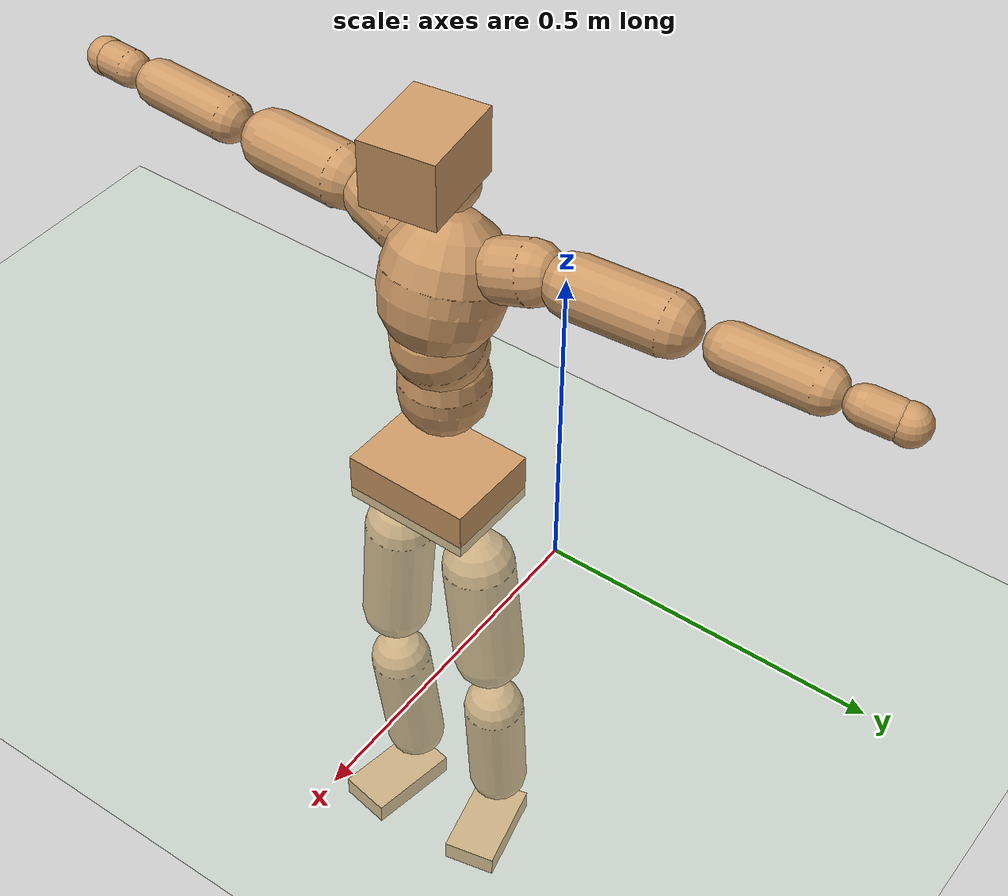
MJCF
<mujoco model="humanoid">
  <compiler coordinate="local" angle="radian"/>
  <default>
    <joint damping="0.0" armature="0.01" stiffness="0.0" limited="true"/>
    <geom conaffinity="1" condim="3" contype="7" margin="0.001" rgba="0.8 0.6 .4 1"/>
  </default>
  <asset>
    <texture type="skybox" builtin="gradient" rgb1=".4 .5 .6" rgb2="0 0 0" width="100" height="100"/>
    <texture builtin="flat" height="1278" mark="cross" markrgb="1 1 1" name="texgeom" random="0.01" rgb1="0.8 0.6 0.4" rgb2="0.8 0.6 0.4" type="cube" width="127"/>
    <texture builtin="checker" height="100" name="texplane" rgb1="0 0 0" rgb2="0.8 0.8 0.8" type="2d" width="100"/>
    <material name="MatPlane" reflectance="0.5" shininess="1" specular="1" texrepeat="60 60" texture="texplane"/>
    <material name="geom" texture="texgeom" texuniform="true"/>
  </asset>
  <worldbody>
    <light cutoff="100" diffuse="1 1 1" dir="-0 0 -1.3" directional="true" exponent="1" pos="0 0 1.3" specular=".1 .1 .1"/>
    <geom conaffinity="1" condim="3" name="floor" pos="0 0 0" rgba="0.8 0.9 0.8 1" size="100 100 .2" type="plane" material="MatPlane"/>
    <body name="Pelvis" pos="0.0002 -0.2145 0.0313">
      <freejoint name="Pelvis"/>
      <geom type="box" contype="1" conaffinity="1" density="500" pos="-0.0047 0.0001 -0.0122" size="0.0782 0.1026 0.0396" quat="0.9999 0.0000 0.0000 -0.0116" name="Pelvis"/>
      <body name="L_Hip" pos="-0.0037 0.0684 -0.0869">
        <joint name="L_Hip_x" type="hinge" pos="0 0 0" axis="1 0 0" stiffness="800" damping="80" armature="0.02" range="-180.0000 180.0000"/>
        <joint name="L_Hip_y" type="hinge" pos="0 0 0" axis="0 1 0" stiffness="800" damping="80" armature="0.02" range="-180.0000 180.0000"/>
        <joint name="L_Hip_z" type="hinge" pos="0 0 0" axis="0 0 1" stiffness="800" damping="80" armature="0.02" range="-180.0000 180.0000"/>
        <geom type="capsule" contype="1" conaffinity="1" density="500" fromto="-0.0015 0.0057 -0.0683 -0.0059 0.0230 -0.2731" size="0.0565" name="L_Hip"/>
        <body name="L_Knee" pos="-0.0073 0.0287 -0.3413">
          <joint name="L_Knee_x" type="hinge" pos="0 0 0" axis="1 0 0" stiffness="800" damping="80" armature="0.02" range="-180.0000 180.0000"/>
          <joint name="L_Knee_y" type="hinge" pos="0 0 0" axis="0 1 0" stiffness="800" damping="80" armature="0.02" range="-180.0000 180.0000"/>
          <joint name="L_Knee_z" type="hinge" pos="0 0 0" axis="0 0 1" stiffness="800" damping="80" armature="0.02" range="-180.0000 180.0000"/>
          <geom type="capsule" contype="1" conaffinity="1" density="500" fromto="-0.0078 -0.0022 -0.0716 -0.0313 -0.0087 -0.2863" size="0.0492" name="L_Knee"/>
          <body name="L_Ankle" pos="-0.0392 -0.0109 -0.3578">
            <joint name="L_Ankle_x" type="hinge" pos="0 0 0" axis="1 0 0" stiffness="800" damping="80" armature="0.02" range="-180.0000 180.0000"/>
            <joint name="L_Ankle_y" type="hinge" pos="0 0 0" axis="0 1 0" stiffness="800" damping="80" armature="0.02" range="-180.0000 180.0000"/>
            <joint name="L_Ankle_z" type="hinge" pos="0 0 0" axis="0 0 1" stiffness="800" damping="80" armature="0.02" range="-180.0000 180.0000"/>
            <geom type="box" contype="1" conaffinity="1" density="500" pos="0.0543 0.0120 -0.0259" size="0.0769 0.0437 0.019" quat="0.9941 0.0000 0.0000 0.1086" name="L_Ankle"/>
            <body name="L_Toe" pos="0.1087 0.024 -0.0518">
              <joint name="L_Toe_x" type="hinge" pos="0 0 0" axis="1 0 0" stiffness="500" damping="50" armature="0.02" range="-180.0000 180.0000"/>
              <joint name="L_Toe_y" type="hinge" pos="0 0 0" axis="0 1 0" stiffness="500" damping="50" armature="0.02" range="-180.0000 180.0000"/>
              <joint name="L_Toe_z" type="hinge" pos="0 0 0" axis="0 0 1" stiffness="500" damping="50" armature="0.02" range="-180.0000 180.0000"/>
              <geom type="box" contype="1" conaffinity="1" density="500" pos="0.0000 0.0000 0.0261" size="0.0009 0.0022 0.001" quat="0.9933 0.0000 0.0000 0.1152" name="L_Toe"/>
            </body>
          </body>
        </body>
      </body>
      <body name="R_Hip" pos="-0.0008 -0.0661 -0.0865">
        <joint name="R_Hip_x" type="hinge" pos="0 0 0" axis="1 0 0" stiffness="800" damping="80" armature="0.02" range="-180.0000 180.0000"/>
        <joint name="R_Hip_y" type="hinge" pos="0 0 0" axis="0 1 0" stiffness="800" damping="80" armature="0.02" range="-180.0000 180.0000"/>
        <joint name="R_Hip_z" type="hinge" pos="0 0 0" axis="0 0 1" stiffness="800" damping="80" armature="0.02" range="-180.0000 180.0000"/>
        <geom type="capsule" contype="1" conaffinity="1" density="500" fromto="-0.0017 -0.0066 -0.0699 -0.0068 -0.0266 -0.2794" size="0.0558" name="R_Hip"/>
        <body name="R_Knee" pos="-0.0085 -0.0332 -0.3493">
          <joint name="R_Knee_x" type="hinge" pos="0 0 0" axis="1 0 0" stiffness="800" damping="80" armature="0.02" range="-180.0000 180.0000"/>
          <joint name="R_Knee_y" type="hinge" pos="0 0 0" axis="0 1 0" stiffness="800" damping="80" armature="0.02" range="-180.0000 180.0000"/>
          <joint name="R_Knee_z" type="hinge" pos="0 0 0" axis="0 0 1" stiffness="800" damping="80" armature="0.02" range="-180.0000 180.0000"/>
          <geom type="capsule" contype="1" conaffinity="1" density="500" fromto="-0.0076 0.0027 -0.0721 -0.0305 0.0108 -0.2884" size="0.0497" name="R_Knee"/>
          <body name="R_Ankle" pos="-0.0381 0.0135 -0.3605">
            <joint name="R_Ankle_x" type="hinge" pos="0 0 0" axis="1 0 0" stiffness="800" damping="80" armature="0.02" range="-180.0000 180.0000"/>
            <joint name="R_Ankle_y" type="hinge" pos="0 0 0" axis="0 1 0" stiffness="800" damping="80" armature="0.02" range="-180.0000 180.0000"/>
            <joint name="R_Ankle_z" type="hinge" pos="0 0 0" axis="0 0 1" stiffness="800" damping="80" armature="0.02" range="-180.0000 180.0000"/>
            <geom type="box" contype="1" conaffinity="1" density="500" pos="0.0559 -0.0096 -0.0219" size="0.0787 0.0437 0.0187" quat="0.9964 0.0000 0.0000 -0.0848" name="R_Ankle"/>
            <body name="R_Toe" pos="0.1119 -0.0192 -0.0437">
              <joint name="R_Toe_x" type="hinge" pos="0 0 0" axis="1 0 0" stiffness="500" damping="50" armature="0.02" range="-180.0000 180.0000"/>
              <joint name="R_Toe_y" type="hinge" pos="0 0 0" axis="0 1 0" stiffness="500" damping="50" armature="0.02" range="-180.0000 180.0000"/>
              <joint name="R_Toe_z" type="hinge" pos="0 0 0" axis="0 0 1" stiffness="500" damping="50" armature="0.02" range="-180.0000 180.0000"/>
              <geom type="box" contype="1" conaffinity="1" density="500" pos="0.0000 0.0000 0.0233" size="0.0009 0.0022 0.001" quat="0.9972 0.0000 0.0000 -0.0748" name="R_Toe"/>
            </body>
          </body>
        </body>
      </body>
      <body name="Torso" pos="-0.0236 -0.0017 0.1003">
        <joint name="Torso_x" type="hinge" pos="0 0 0" axis="1 0 0" stiffness="1000" damping="100" armature="0.02" range="-180.0000 180.0000"/>
        <joint name="Torso_y" type="hinge" pos="0 0 0" axis="0 1 0" stiffness="1000" damping="100" armature="0.02" range="-180.0000 180.0000"/>
        <joint name="Torso_z" type="hinge" pos="0 0 0" axis="0 0 1" stiffness="1000" damping="100" armature="0.02" range="-180.0000 180.0000"/>
        <geom type="capsule" contype="1" conaffinity="1" density="500" fromto="-0.0011 0.0017 0.0746 -0.0007 0.0012 0.0497" size="0.0685" name="Torso"/>
        <body name="Spine" pos="-0.0018 0.0029 0.1243">
          <joint name="Spine_x" type="hinge" pos="0 0 0" axis="1 0 0" stiffness="1000" damping="100" armature="0.02" range="-180.0000 180.0000"/>
          <joint name="Spine_y" type="hinge" pos="0 0 0" axis="0 1 0" stiffness="1000" damping="100" armature="0.02" range="-180.0000 180.0000"/>
          <joint name="Spine_z" type="hinge" pos="0 0 0" axis="0 0 1" stiffness="1000" damping="100" armature="0.02" range="-180.0000 180.0000"/>
          <geom type="capsule" contype="1" conaffinity="1" density="500" fromto="0.0149 0.0008 0.0295 0.0100 0.0005 0.0197" size="0.0706" name="Spine"/>
          <body name="Chest" pos="0.0249 0.0013 0.0491">
            <joint name="Chest_x" type="hinge" pos="0 0 0" axis="1 0 0" stiffness="1000" damping="100" armature="0.02" range="-180.0000 180.0000"/>
            <joint name="Chest_y" type="hinge" pos="0 0 0" axis="0 1 0" stiffness="1000" damping="100" armature="0.02" range="-180.0000 180.0000"/>
            <joint name="Chest_z" type="hinge" pos="0 0 0" axis="0 0 1" stiffness="1000" damping="100" armature="0.02" range="-180.0000 180.0000"/>
            <geom type="capsule" contype="1" conaffinity="1" density="500" fromto="-0.0287 -0.0011 0.0893 -0.0191 -0.0007 0.0595" size="0.0918" name="Chest"/>
            <body name="Neck" pos="-0.0566 -0.0026 0.2116">
              <joint name="Neck_x" type="hinge" pos="0 0 0" axis="1 0 0" stiffness="500" damping="50" armature="0.02" range="-180.0000 180.0000"/>
              <joint name="Neck_y" type="hinge" pos="0 0 0" axis="0 1 0" stiffness="500" damping="50" armature="0.02" range="-180.0000 180.0000"/>
              <joint name="Neck_z" type="hinge" pos="0 0 0" axis="0 0 1" stiffness="500" damping="50" armature="0.02" range="-180.0000 180.0000"/>
              <geom type="capsule" contype="1" conaffinity="1" density="500" fromto="0.0100 0.0010 0.0128 0.0399 0.0040 0.0511" size="0.0395" name="Neck"/>
              <body name="Head" pos="0.0499 0.005 0.0639">
                <joint name="Head_x" type="hinge" pos="0 0 0" axis="1 0 0" stiffness="500" damping="50" armature="0.02" range="-180.0000 180.0000"/>
                <joint name="Head_y" type="hinge" pos="0 0 0" axis="0 1 0" stiffness="500" damping="50" armature="0.02" range="-180.0000 180.0000"/>
                <joint name="Head_z" type="hinge" pos="0 0 0" axis="0 0 1" stiffness="500" damping="50" armature="0.02" range="-180.0000 180.0000"/>
                <geom type="box" contype="1" conaffinity="1" density="500" pos="0.0259 0.0035 0.0329" size="0.0716 0.0564 0.0505" quat="0.9978 0.0000 0.0000 0.0667" name="Head"/>
              </body>
            </body>
            <body name="L_Thorax" pos="-0.041 0.069 0.1183">
              <joint name="L_Thorax_x" type="hinge" pos="0 0 0" axis="1 0 0" stiffness="500" damping="50" armature="0.02" range="-180.0000 180.0000"/>
              <joint name="L_Thorax_y" type="hinge" pos="0 0 0" axis="0 1 0" stiffness="500" damping="50" armature="0.02" range="-180.0000 180.0000"/>
              <joint name="L_Thorax_z" type="hinge" pos="0 0 0" axis="0 0 1" stiffness="500" damping="50" armature="0.02" range="-180.0000 180.0000"/>
              <geom type="capsule" contype="1" conaffinity="1" density="500" fromto="-0.0010 0.0155 0.0052 -0.0039 0.0621 0.0208" size="0.0463" name="L_Thorax"/>
              <body name="L_Shoulder" pos="-0.0049 0.0776 0.026">
                <joint name="L_Shoulder_x" type="hinge" pos="0 0 0" axis="1 0 0" stiffness="500" damping="50" armature="0.02" range="-720.0000 720.0000"/>
                <joint name="L_Shoulder_y" type="hinge" pos="0 0 0" axis="0 1 0" stiffness="500" damping="50" armature="0.02" range="-720.0000 720.0000"/>
                <joint name="L_Shoulder_z" type="hinge" pos="0 0 0" axis="0 0 1" stiffness="500" damping="50" armature="0.02" range="-720.0000 720.0000"/>
                <geom type="capsule" contype="1" conaffinity="1" density="500" fromto="-0.0043 0.0454 -0.0010 -0.0173 0.1817 -0.0040" size="0.0459" name="L_Shoulder"/>
                <body name="L_Elbow" pos="-0.0216 0.2271 -0.005">
                  <joint name="L_Elbow_x" type="hinge" pos="0 0 0" axis="1 0 0" stiffness="500" damping="50" armature="0.02" range="-720.0000 720.0000"/>
                  <joint name="L_Elbow_y" type="hinge" pos="0 0 0" axis="0 1 0" stiffness="500" damping="50" armature="0.02" range="-720.0000 720.0000"/>
                  <joint name="L_Elbow_z" type="hinge" pos="0 0 0" axis="0 0 1" stiffness="500" damping="50" armature="0.02" range="-720.0000 720.0000"/>
                  <geom type="capsule" contype="1" conaffinity="1" density="500" fromto="-0.0002 0.0427 0.0013 -0.0010 0.1707 0.0053" size="0.0361" name="L_Elbow"/>
                  <body name="L_Wrist" pos="-0.0012 0.2134 0.0067">
                    <joint name="L_Wrist_x" type="hinge" pos="0 0 0" axis="1 0 0" stiffness="300" damping="30" armature="0.02" range="-180.0000 180.0000"/>
                    <joint name="L_Wrist_y" type="hinge" pos="0 0 0" axis="0 1 0" stiffness="300" damping="30" armature="0.02" range="-180.0000 180.0000"/>
                    <joint name="L_Wrist_z" type="hinge" pos="0 0 0" axis="0 0 1" stiffness="300" damping="30" armature="0.02" range="-180.0000 180.0000"/>
                    <geom type="capsule" contype="1" conaffinity="1" density="500" fromto="-0.0024 0.0145 -0.0017 -0.0096 0.0578 -0.0069" size="0.0276" name="L_Wrist"/>
                    <body name="L_Hand" pos="-0.012 0.0723 -0.0086">
                      <joint name="L_Hand_x" type="hinge" pos="0 0 0" axis="1 0 0" stiffness="300" damping="30" armature="0.02" range="-180.0000 180.0000"/>
                      <joint name="L_Hand_y" type="hinge" pos="0 0 0" axis="0 1 0" stiffness="300" damping="30" armature="0.02" range="-180.0000 180.0000"/>
                      <joint name="L_Hand_z" type="hinge" pos="0 0 0" axis="0 0 1" stiffness="300" damping="30" armature="0.02" range="-180.0000 180.0000"/>
                      <geom type="sphere" contype="1" conaffinity="1" density="500" size="0.0293" pos="0.0000 0.0000 0.0000" name="L_Hand"/>
                    </body>
                  </body>
                </body>
              </body>
            </body>
            <body name="R_Thorax" pos="-0.0461 -0.072 0.1167">
              <joint name="R_Thorax_x" type="hinge" pos="0 0 0" axis="1 0 0" stiffness="500" damping="50" armature="0.02" range="-180.0000 180.0000"/>
              <joint name="R_Thorax_y" type="hinge" pos="0 0 0" axis="0 1 0" stiffness="500" damping="50" armature="0.02" range="-180.0000 180.0000"/>
              <joint name="R_Thorax_z" type="hinge" pos="0 0 0" axis="0 0 1" stiffness="500" damping="50" armature="0.02" range="-180.0000 180.0000"/>
              <geom type="capsule" contype="1" conaffinity="1" density="500" fromto="-0.0016 -0.0162 0.0057 -0.0064 -0.0647 0.0230" size="0.0458" name="R_Thorax"/>
              <body name="R_Shoulder" pos="-0.008 -0.0809 0.0287">
                <joint name="R_Shoulder_x" type="hinge" pos="0 0 0" axis="1 0 0" stiffness="500" damping="50" armature="0.02" range="-720.0000 720.0000"/>
                <joint name="R_Shoulder_y" type="hinge" pos="0 0 0" axis="0 1 0" stiffness="500" damping="50" armature="0.02" range="-720.0000 720.0000"/>
                <joint name="R_Shoulder_z" type="hinge" pos="0 0 0" axis="0 0 1" stiffness="500" damping="50" armature="0.02" range="-720.0000 720.0000"/>
                <geom type="capsule" contype="1" conaffinity="1" density="500" fromto="-0.0035 -0.0447 -0.0019 -0.0138 -0.1788 -0.0075" size="0.0474" name="R_Shoulder"/>
                <body name="R_Elbow" pos="-0.0173 -0.2235 -0.0094">
                  <joint name="R_Elbow_x" type="hinge" pos="0 0 0" axis="1 0 0" stiffness="500" damping="50" armature="0.02" range="-720.0000 720.0000"/>
                  <joint name="R_Elbow_y" type="hinge" pos="0 0 0" axis="0 1 0" stiffness="500" damping="50" armature="0.02" range="-720.0000 720.0000"/>
                  <joint name="R_Elbow_z" type="hinge" pos="0 0 0" axis="0 0 1" stiffness="500" damping="50" armature="0.02" range="-720.0000 720.0000"/>
                  <geom type="capsule" contype="1" conaffinity="1" density="500" fromto="-0.0010 -0.0446 0.0015 -0.0042 -0.1784 0.0060" size="0.0363" name="R_Elbow"/>
                  <body name="R_Wrist" pos="-0.0052 -0.223 0.0075">
                    <joint name="R_Wrist_x" type="hinge" pos="0 0 0" axis="1 0 0" stiffness="300" damping="30" armature="0.02" range="-180.0000 180.0000"/>
                    <joint name="R_Wrist_y" type="hinge" pos="0 0 0" axis="0 1 0" stiffness="300" damping="30" armature="0.02" range="-180.0000 180.0000"/>
                    <joint name="R_Wrist_z" type="hinge" pos="0 0 0" axis="0 0 1" stiffness="300" damping="30" armature="0.02" range="-180.0000 180.0000"/>
                    <geom type="capsule" contype="1" conaffinity="1" density="500" fromto="-0.0019 -0.0147 -0.0013 -0.0075 -0.0589 -0.0052" size="0.0286" name="R_Wrist"/>
                    <body name="R_Hand" pos="-0.0094 -0.0736 -0.0065">
                      <joint name="R_Hand_x" type="hinge" pos="0 0 0" axis="1 0 0" stiffness="300" damping="30" armature="0.02" range="-180.0000 180.0000"/>
                      <joint name="R_Hand_y" type="hinge" pos="0 0 0" axis="0 1 0" stiffness="300" damping="30" armature="0.02" range="-180.0000 180.0000"/>
                      <joint name="R_Hand_z" type="hinge" pos="0 0 0" axis="0 0 1" stiffness="300" damping="30" armature="0.02" range="-180.0000 180.0000"/>
                      <geom type="sphere" contype="1" conaffinity="1" density="500" size="0.0298" pos="0.0000 0.0000 0.0000" name="R_Hand"/>
                    </body>
                  </body>
                </body>
              </body>
            </body>
          </body>
        </body>
      </body>
    </body>
  </worldbody>
  <actuator>
    <motor name="L_Hip_x" joint="L_Hip_x" gear="500"/>
    <motor name="L_Hip_y" joint="L_Hip_y" gear="500"/>
    <motor name="L_Hip_z" joint="L_Hip_z" gear="500"/>
    <motor name="L_Knee_x" joint="L_Knee_x" gear="500"/>
    <motor name="L_Knee_y" joint="L_Knee_y" gear="500"/>
    <motor name="L_Knee_z" joint="L_Knee_z" gear="500"/>
    <motor name="L_Ankle_x" joint="L_Ankle_x" gear="500"/>
    <motor name="L_Ankle_y" joint="L_Ankle_y" gear="500"/>
    <motor name="L_Ankle_z" joint="L_Ankle_z" gear="500"/>
    <motor name="L_Toe_x" joint="L_Toe_x" gear="500"/>
    <motor name="L_Toe_y" joint="L_Toe_y" gear="500"/>
    <motor name="L_Toe_z" joint="L_Toe_z" gear="500"/>
    <motor name="R_Hip_x" joint="R_Hip_x" gear="500"/>
    <motor name="R_Hip_y" joint="R_Hip_y" gear="500"/>
    <motor name="R_Hip_z" joint="R_Hip_z" gear="500"/>
    <motor name="R_Knee_x" joint="R_Knee_x" gear="500"/>
    <motor name="R_Knee_y" joint="R_Knee_y" gear="500"/>
    <motor name="R_Knee_z" joint="R_Knee_z" gear="500"/>
    <motor name="R_Ankle_x" joint="R_Ankle_x" gear="500"/>
    <motor name="R_Ankle_y" joint="R_Ankle_y" gear="500"/>
    <motor name="R_Ankle_z" joint="R_Ankle_z" gear="500"/>
    <motor name="R_Toe_x" joint="R_Toe_x" gear="500"/>
    <motor name="R_Toe_y" joint="R_Toe_y" gear="500"/>
    <motor name="R_Toe_z" joint="R_Toe_z" gear="500"/>
    <motor name="Torso_x" joint="Torso_x" gear="500"/>
    <motor name="Torso_y" joint="Torso_y" gear="500"/>
    <motor name="Torso_z" joint="Torso_z" gear="500"/>
    <motor name="Spine_x" joint="Spine_x" gear="500"/>
    <motor name="Spine_y" joint="Spine_y" gear="500"/>
    <motor name="Spine_z" joint="Spine_z" gear="500"/>
    <motor name="Chest_x" joint="Chest_x" gear="500"/>
    <motor name="Chest_y" joint="Chest_y" gear="500"/>
    <motor name="Chest_z" joint="Chest_z" gear="500"/>
    <motor name="Neck_x" joint="Neck_x" gear="500"/>
    <motor name="Neck_y" joint="Neck_y" gear="500"/>
    <motor name="Neck_z" joint="Neck_z" gear="500"/>
    <motor name="Head_x" joint="Head_x" gear="500"/>
    <motor name="Head_y" joint="Head_y" gear="500"/>
    <motor name="Head_z" joint="Head_z" gear="500"/>
    <motor name="L_Thorax_x" joint="L_Thorax_x" gear="500"/>
    <motor name="L_Thorax_y" joint="L_Thorax_y" gear="500"/>
    <motor name="L_Thorax_z" joint="L_Thorax_z" gear="500"/>
    <motor name="L_Shoulder_x" joint="L_Shoulder_x" gear="500"/>
    <motor name="L_Shoulder_y" joint="L_Shoulder_y" gear="500"/>
    <motor name="L_Shoulder_z" joint="L_Shoulder_z" gear="500"/>
    <motor name="L_Elbow_x" joint="L_Elbow_x" gear="500"/>
    <motor name="L_Elbow_y" joint="L_Elbow_y" gear="500"/>
    <motor name="L_Elbow_z" joint="L_Elbow_z" gear="500"/>
    <motor name="L_Wrist_x" joint="L_Wrist_x" gear="500"/>
    <motor name="L_Wrist_y" joint="L_Wrist_y" gear="500"/>
    <motor name="L_Wrist_z" joint="L_Wrist_z" gear="500"/>
    <motor name="L_Hand_x" joint="L_Hand_x" gear="500"/>
    <motor name="L_Hand_y" joint="L_Hand_y" gear="500"/>
    <motor name="L_Hand_z" joint="L_Hand_z" gear="500"/>
    <motor name="R_Thorax_x" joint="R_Thorax_x" gear="500"/>
    <motor name="R_Thorax_y" joint="R_Thorax_y" gear="500"/>
    <motor name="R_Thorax_z" joint="R_Thorax_z" gear="500"/>
    <motor name="R_Shoulder_x" joint="R_Shoulder_x" gear="500"/>
    <motor name="R_Shoulder_y" joint="R_Shoulder_y" gear="500"/>
    <motor name="R_Shoulder_z" joint="R_Shoulder_z" gear="500"/>
    <motor name="R_Elbow_x" joint="R_Elbow_x" gear="500"/>
    <motor name="R_Elbow_y" joint="R_Elbow_y" gear="500"/>
    <motor name="R_Elbow_z" joint="R_Elbow_z" gear="500"/>
    <motor name="R_Wrist_x" joint="R_Wrist_x" gear="500"/>
    <motor name="R_Wrist_y" joint="R_Wrist_y" gear="500"/>
    <motor name="R_Wrist_z" joint="R_Wrist_z" gear="500"/>
    <motor name="R_Hand_x" joint="R_Hand_x" gear="500"/>
    <motor name="R_Hand_y" joint="R_Hand_y" gear="500"/>
    <motor name="R_Hand_z" joint="R_Hand_z" gear="500"/>
  </actuator>
  <contact>
    <exclude body1="Torso" body2="Chest"/>
    <exclude body1="Head" body2="Chest"/>
    <exclude body1="R_Knee" body2="R_Toe"/>
    <exclude body1="R_Knee" body2="L_Ankle"/>
    <exclude body1="R_Knee" body2="L_Toe"/>
    <exclude body1="L_Knee" body2="L_Toe"/>
    <exclude body1="L_Knee" body2="R_Ankle"/>
    <exclude body1="L_Knee" body2="R_Toe"/>
    <exclude body1="L_Shoulder" body2="Chest"/>
    <exclude body1="R_Shoulder" body2="Chest"/>
  </contact>
  <sensor/>
  <size njmax="700" nconmax="700"/>
</mujoco>
